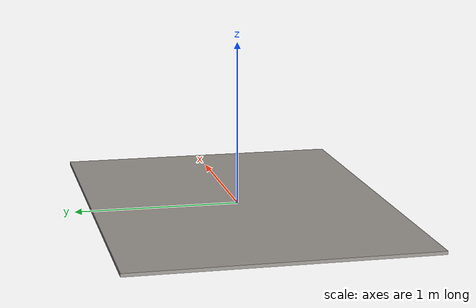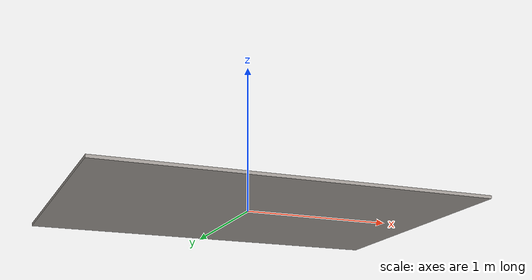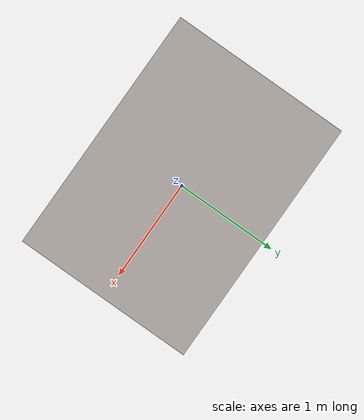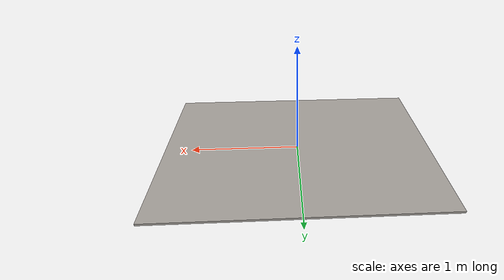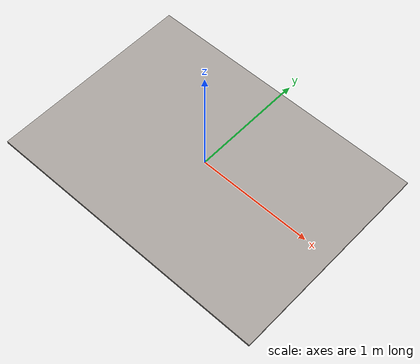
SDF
<?xml version="1.0"?>
<sdf version="1.6">
  <model name="lounge_mat">
    <static>true</static>
    <link name="link">
      <collision name="col">
        <geometry>
          <box>
            <size>2.5 1.8 0.02</size>
          </box>
        </geometry>
      </collision>
      <visual name="vis">
        <geometry>
          <box>
            <size>2.5 1.8 0.02</size>
          </box>
        </geometry>
        <material>
          <ambient>0.62 0.6 0.58 1</ambient>
          <diffuse>0.62 0.6 0.58 1</diffuse>
        </material>
      </visual>
    </link>
  </model>
</sdf>
